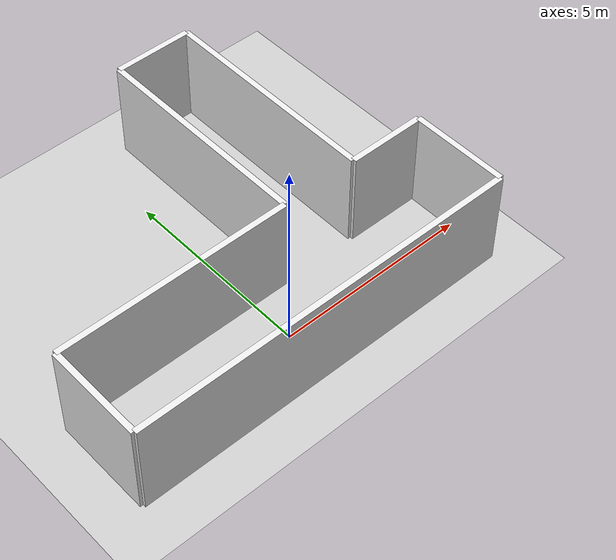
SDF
<?xml version='1.0'?>
<sdf version='1.6'>
  <world name='lste_t_junction_small'>
    <gravity>0 0 -9.8</gravity>
    <physics type='ode'>
      <max_step_size>0.001</max_step_size>
      <real_time_factor>1</real_time_factor>
      <real_time_update_rate>1000</real_time_update_rate>
    </physics>
    <scene>
      <ambient>0.45 0.45 0.45 1</ambient>
      <background>0.72 0.72 0.72 1</background>
      <shadows>true</shadows>
    </scene>
    <light name='sun' type='directional'>
      <cast_shadows>true</cast_shadows>
      <pose>0 0 10 0 0 0</pose>
      <diffuse>0.8 0.8 0.8 1</diffuse>
      <specular>0.2 0.2 0.2 1</specular>
      <direction>-0.5 0.2 -0.9</direction>
    </light>
    <model name='ground_plane'>
      <static>true</static>
      <link name='link'>
        <collision name='collision'>
          <geometry><plane><normal>0 0 1</normal><size>30 30</size></plane></geometry>
        </collision>
        <visual name='visual'>
          <geometry><plane><normal>0 0 1</normal><size>30 30</size></plane></geometry>
          <material>
            <script><uri>file://media/materials/scripts/gazebo.material</uri><name>Gazebo/Grey</name></script>
          </material>
        </visual>
      </link>
    </model>

    <model name='t_junction_structure'>
      <static>true</static>
      <link name='walls'>
        <collision name='south_wall'>
          <pose>0 -1.25 1.25 0 0 0</pose>
          <geometry><box><size>10 0.15 2.5</size></box></geometry>
        </collision>
        <visual name='south_wall_visual'>
          <pose>0 -1.25 1.25 0 0 0</pose>
          <geometry><box><size>10 0.15 2.5</size></box></geometry>
          <material><script><uri>file://media/materials/scripts/gazebo.material</uri><name>Gazebo/White</name></script></material>
        </visual>
        <collision name='north_wall_west'>
          <pose>-2 1.25 1.25 0 0 0</pose>
          <geometry><box><size>6 0.15 2.5</size></box></geometry>
        </collision>
        <visual name='north_wall_west_visual'>
          <pose>-2 1.25 1.25 0 0 0</pose>
          <geometry><box><size>6 0.15 2.5</size></box></geometry>
          <material><script><uri>file://media/materials/scripts/gazebo.material</uri><name>Gazebo/White</name></script></material>
        </visual>
        <collision name='north_wall_east'>
          <pose>4 1.25 1.25 0 0 0</pose>
          <geometry><box><size>2 0.15 2.5</size></box></geometry>
        </collision>
        <visual name='north_wall_east_visual'>
          <pose>4 1.25 1.25 0 0 0</pose>
          <geometry><box><size>2 0.15 2.5</size></box></geometry>
          <material><script><uri>file://media/materials/scripts/gazebo.material</uri><name>Gazebo/White</name></script></material>
        </visual>
        <collision name='west_end_wall'>
          <pose>-5 0 1.25 0 0 0</pose>
          <geometry><box><size>0.15 2.5 2.5</size></box></geometry>
        </collision>
        <visual name='west_end_wall_visual'>
          <pose>-5 0 1.25 0 0 0</pose>
          <geometry><box><size>0.15 2.5 2.5</size></box></geometry>
          <material><script><uri>file://media/materials/scripts/gazebo.material</uri><name>Gazebo/White</name></script></material>
        </visual>
        <collision name='east_end_wall'>
          <pose>5 0 1.25 0 0 0</pose>
          <geometry><box><size>0.15 2.5 2.5</size></box></geometry>
        </collision>
        <visual name='east_end_wall_visual'>
          <pose>5 0 1.25 0 0 0</pose>
          <geometry><box><size>0.15 2.5 2.5</size></box></geometry>
          <material><script><uri>file://media/materials/scripts/gazebo.material</uri><name>Gazebo/White</name></script></material>
        </visual>
        <collision name='branch_west_wall'>
          <pose>1 4.125 1.25 0 0 0</pose>
          <geometry><box><size>0.15 5.75 2.5</size></box></geometry>
        </collision>
        <visual name='branch_west_wall_visual'>
          <pose>1 4.125 1.25 0 0 0</pose>
          <geometry><box><size>0.15 5.75 2.5</size></box></geometry>
          <material><script><uri>file://media/materials/scripts/gazebo.material</uri><name>Gazebo/White</name></script></material>
        </visual>
        <collision name='branch_east_wall'>
          <pose>3 4.125 1.25 0 0 0</pose>
          <geometry><box><size>0.15 5.75 2.5</size></box></geometry>
        </collision>
        <visual name='branch_east_wall_visual'>
          <pose>3 4.125 1.25 0 0 0</pose>
          <geometry><box><size>0.15 5.75 2.5</size></box></geometry>
          <material><script><uri>file://media/materials/scripts/gazebo.material</uri><name>Gazebo/White</name></script></material>
        </visual>
        <collision name='branch_end_wall'>
          <pose>2 7 1.25 0 0 0</pose>
          <geometry><box><size>2 0.15 2.5</size></box></geometry>
        </collision>
        <visual name='branch_end_wall_visual'>
          <pose>2 7 1.25 0 0 0</pose>
          <geometry><box><size>2 0.15 2.5</size></box></geometry>
          <material><script><uri>file://media/materials/scripts/gazebo.material</uri><name>Gazebo/White</name></script></material>
        </visual>
      </link>
    </model>
  </world>
</sdf>
